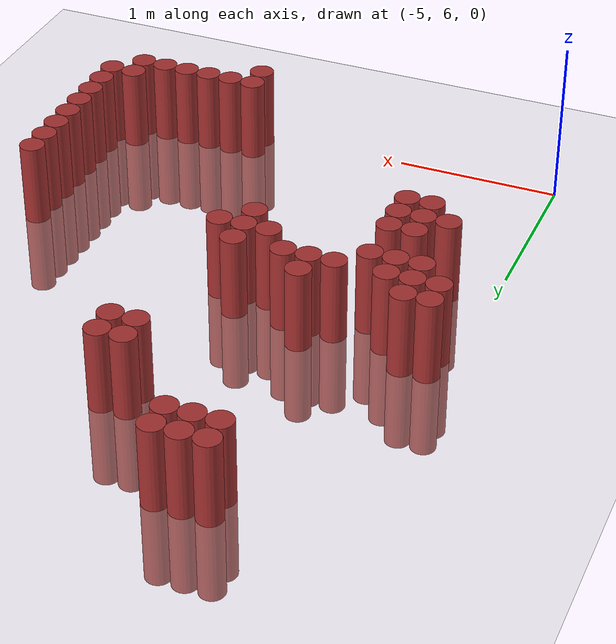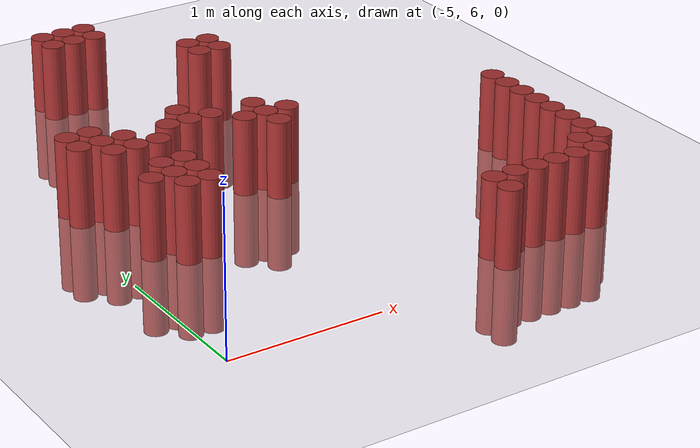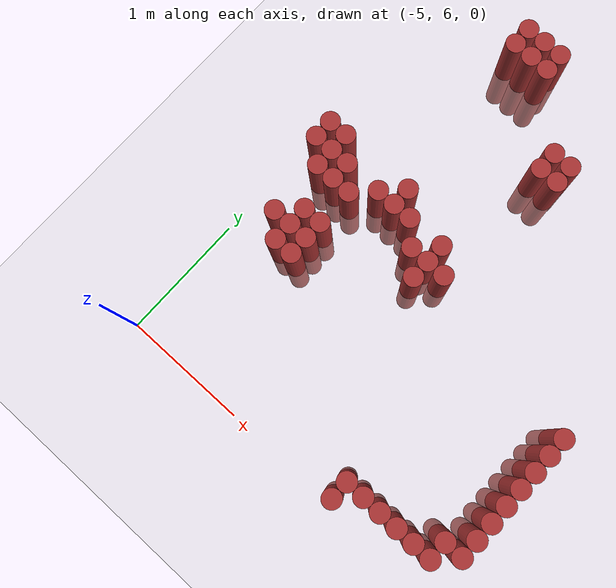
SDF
<sdf version="1.6">
 <world name="default">
  <model name="ground_plane">
   <static>1</static>
   <link name="link">
    <collision name="collision">
     <geometry><plane><normal>0 0 1</normal><size>100 100</size></plane></geometry>
     <surface><friction><ode><mu>100</mu><mu2>50</mu2></ode></friction></surface>
    </collision>
    <visual name="visual">
     <cast_shadows>0</cast_shadows>
     <geometry><plane><normal>0 0 1</normal><size>100 100</size></plane></geometry>
     <material>
      <script><uri>file://media/materials/scripts/gazebo.material</uri><name>Gazebo/Grey</name></script>
     </material>
    </visual>
   </link>
  </model>
  <model name="unit_cylinder_262">
   <static>1</static>
   <pose>-4.875000 7.875000 0.000000 0.000000 0.000000 0.000000</pose>
   <link name="link">
    <inertial>
     <mass>1</mass>
     <inertia><ixx>0.145833</ixx><ixy>0</ixy><ixz>0</ixz><iyy>0.145833</iyy><iyz>0</iyz><izz>0.125</izz></inertia>
    </inertial>
    <collision name="collision">
     <geometry><cylinder><radius>0.075000</radius><length>1</length></cylinder></geometry>
    </collision>
    <visual name="visual">
     <geometry><cylinder><radius>0.075000</radius><length>1</length></cylinder></geometry>
     <material>
      <ambient>0.648000 0.192000 0.192000 1</ambient>
      <diffuse>0.648000 0.192000 0.192000 1</diffuse>
     </material>
     <material>
      <script><name>Gazebo/Grey</name><uri>file://media/materials/scripts/gazebo.material</uri></script>
     </material>
    </visual>
   </link>
  </model>
  <model name="unit_cylinder_263">
   <static>1</static>
   <pose>-4.875000 8.025000 0.000000 0.000000 0.000000 0.000000</pose>
   <link name="link">
    <inertial>
     <mass>1</mass>
     <inertia><ixx>0.145833</ixx><ixy>0</ixy><ixz>0</ixz><iyy>0.145833</iyy><iyz>0</iyz><izz>0.125</izz></inertia>
    </inertial>
    <collision name="collision">
     <geometry><cylinder><radius>0.075000</radius><length>1</length></cylinder></geometry>
    </collision>
    <visual name="visual">
     <geometry><cylinder><radius>0.075000</radius><length>1</length></cylinder></geometry>
     <material>
      <ambient>0.648000 0.192000 0.192000 1</ambient>
      <diffuse>0.648000 0.192000 0.192000 1</diffuse>
     </material>
     <material>
      <script><name>Gazebo/Grey</name><uri>file://media/materials/scripts/gazebo.material</uri></script>
     </material>
    </visual>
   </link>
  </model>
  <model name="unit_cylinder_264">
   <static>1</static>
   <pose>-4.725000 7.275000 0.000000 0.000000 0.000000 0.000000</pose>
   <link name="link">
    <inertial>
     <mass>1</mass>
     <inertia><ixx>0.145833</ixx><ixy>0</ixy><ixz>0</ixz><iyy>0.145833</iyy><iyz>0</iyz><izz>0.125</izz></inertia>
    </inertial>
    <collision name="collision">
     <geometry><cylinder><radius>0.075000</radius><length>1</length></cylinder></geometry>
    </collision>
    <visual name="visual">
     <geometry><cylinder><radius>0.075000</radius><length>1</length></cylinder></geometry>
     <material>
      <ambient>0.648000 0.192000 0.192000 1</ambient>
      <diffuse>0.648000 0.192000 0.192000 1</diffuse>
     </material>
     <material>
      <script><name>Gazebo/Grey</name><uri>file://media/materials/scripts/gazebo.material</uri></script>
     </material>
    </visual>
   </link>
  </model>
  <model name="unit_cylinder_265">
   <static>1</static>
   <pose>-4.725000 7.725000 0.000000 0.000000 0.000000 0.000000</pose>
   <link name="link">
    <inertial>
     <mass>1</mass>
     <inertia><ixx>0.145833</ixx><ixy>0</ixy><ixz>0</ixz><iyy>0.145833</iyy><iyz>0</iyz><izz>0.125</izz></inertia>
    </inertial>
    <collision name="collision">
     <geometry><cylinder><radius>0.075000</radius><length>1</length></cylinder></geometry>
    </collision>
    <visual name="visual">
     <geometry><cylinder><radius>0.075000</radius><length>1</length></cylinder></geometry>
     <material>
      <ambient>0.648000 0.192000 0.192000 1</ambient>
      <diffuse>0.648000 0.192000 0.192000 1</diffuse>
     </material>
     <material>
      <script><name>Gazebo/Grey</name><uri>file://media/materials/scripts/gazebo.material</uri></script>
     </material>
    </visual>
   </link>
  </model>
  <model name="unit_cylinder_266">
   <static>1</static>
   <pose>-4.725000 7.875000 0.000000 0.000000 0.000000 0.000000</pose>
   <link name="link">
    <inertial>
     <mass>1</mass>
     <inertia><ixx>0.145833</ixx><ixy>0</ixy><ixz>0</ixz><iyy>0.145833</iyy><iyz>0</iyz><izz>0.125</izz></inertia>
    </inertial>
    <collision name="collision">
     <geometry><cylinder><radius>0.075000</radius><length>1</length></cylinder></geometry>
    </collision>
    <visual name="visual">
     <geometry><cylinder><radius>0.075000</radius><length>1</length></cylinder></geometry>
     <material>
      <ambient>0.648000 0.192000 0.192000 1</ambient>
      <diffuse>0.648000 0.192000 0.192000 1</diffuse>
     </material>
     <material>
      <script><name>Gazebo/Grey</name><uri>file://media/materials/scripts/gazebo.material</uri></script>
     </material>
    </visual>
   </link>
  </model>
  <model name="unit_cylinder_267">
   <static>1</static>
   <pose>-4.725000 8.025000 0.000000 0.000000 0.000000 0.000000</pose>
   <link name="link">
    <inertial>
     <mass>1</mass>
     <inertia><ixx>0.145833</ixx><ixy>0</ixy><ixz>0</ixz><iyy>0.145833</iyy><iyz>0</iyz><izz>0.125</izz></inertia>
    </inertial>
    <collision name="collision">
     <geometry><cylinder><radius>0.075000</radius><length>1</length></cylinder></geometry>
    </collision>
    <visual name="visual">
     <geometry><cylinder><radius>0.075000</radius><length>1</length></cylinder></geometry>
     <material>
      <ambient>0.648000 0.192000 0.192000 1</ambient>
      <diffuse>0.648000 0.192000 0.192000 1</diffuse>
     </material>
     <material>
      <script><name>Gazebo/Grey</name><uri>file://media/materials/scripts/gazebo.material</uri></script>
     </material>
    </visual>
   </link>
  </model>
  <model name="unit_cylinder_268">
   <static>1</static>
   <pose>-4.575000 7.125000 0.000000 0.000000 0.000000 0.000000</pose>
   <link name="link">
    <inertial>
     <mass>1</mass>
     <inertia><ixx>0.145833</ixx><ixy>0</ixy><ixz>0</ixz><iyy>0.145833</iyy><iyz>0</iyz><izz>0.125</izz></inertia>
    </inertial>
    <collision name="collision">
     <geometry><cylinder><radius>0.075000</radius><length>1</length></cylinder></geometry>
    </collision>
    <visual name="visual">
     <geometry><cylinder><radius>0.075000</radius><length>1</length></cylinder></geometry>
     <material>
      <ambient>0.648000 0.192000 0.192000 1</ambient>
      <diffuse>0.648000 0.192000 0.192000 1</diffuse>
     </material>
     <material>
      <script><name>Gazebo/Grey</name><uri>file://media/materials/scripts/gazebo.material</uri></script>
     </material>
    </visual>
   </link>
  </model>
  <model name="unit_cylinder_269">
   <static>1</static>
   <pose>-4.575000 7.275000 0.000000 0.000000 0.000000 0.000000</pose>
   <link name="link">
    <inertial>
     <mass>1</mass>
     <inertia><ixx>0.145833</ixx><ixy>0</ixy><ixz>0</ixz><iyy>0.145833</iyy><iyz>0</iyz><izz>0.125</izz></inertia>
    </inertial>
    <collision name="collision">
     <geometry><cylinder><radius>0.075000</radius><length>1</length></cylinder></geometry>
    </collision>
    <visual name="visual">
     <geometry><cylinder><radius>0.075000</radius><length>1</length></cylinder></geometry>
     <material>
      <ambient>0.648000 0.192000 0.192000 1</ambient>
      <diffuse>0.648000 0.192000 0.192000 1</diffuse>
     </material>
     <material>
      <script><name>Gazebo/Grey</name><uri>file://media/materials/scripts/gazebo.material</uri></script>
     </material>
    </visual>
   </link>
  </model>
  <model name="unit_cylinder_270">
   <static>1</static>
   <pose>-4.575000 7.425000 0.000000 0.000000 0.000000 0.000000</pose>
   <link name="link">
    <inertial>
     <mass>1</mass>
     <inertia><ixx>0.145833</ixx><ixy>0</ixy><ixz>0</ixz><iyy>0.145833</iyy><iyz>0</iyz><izz>0.125</izz></inertia>
    </inertial>
    <collision name="collision">
     <geometry><cylinder><radius>0.075000</radius><length>1</length></cylinder></geometry>
    </collision>
    <visual name="visual">
     <geometry><cylinder><radius>0.075000</radius><length>1</length></cylinder></geometry>
     <material>
      <ambient>0.648000 0.192000 0.192000 1</ambient>
      <diffuse>0.648000 0.192000 0.192000 1</diffuse>
     </material>
     <material>
      <script><name>Gazebo/Grey</name><uri>file://media/materials/scripts/gazebo.material</uri></script>
     </material>
    </visual>
   </link>
  </model>
  <model name="unit_cylinder_271">
   <static>1</static>
   <pose>-4.575000 7.725000 0.000000 0.000000 0.000000 0.000000</pose>
   <link name="link">
    <inertial>
     <mass>1</mass>
     <inertia><ixx>0.145833</ixx><ixy>0</ixy><ixz>0</ixz><iyy>0.145833</iyy><iyz>0</iyz><izz>0.125</izz></inertia>
    </inertial>
    <collision name="collision">
     <geometry><cylinder><radius>0.075000</radius><length>1</length></cylinder></geometry>
    </collision>
    <visual name="visual">
     <geometry><cylinder><radius>0.075000</radius><length>1</length></cylinder></geometry>
     <material>
      <ambient>0.648000 0.192000 0.192000 1</ambient>
      <diffuse>0.648000 0.192000 0.192000 1</diffuse>
     </material>
     <material>
      <script><name>Gazebo/Grey</name><uri>file://media/materials/scripts/gazebo.material</uri></script>
     </material>
    </visual>
   </link>
  </model>
  <model name="unit_cylinder_272">
   <static>1</static>
   <pose>-4.575000 7.875000 0.000000 0.000000 0.000000 0.000000</pose>
   <link name="link">
    <inertial>
     <mass>1</mass>
     <inertia><ixx>0.145833</ixx><ixy>0</ixy><ixz>0</ixz><iyy>0.145833</iyy><iyz>0</iyz><izz>0.125</izz></inertia>
    </inertial>
    <collision name="collision">
     <geometry><cylinder><radius>0.075000</radius><length>1</length></cylinder></geometry>
    </collision>
    <visual name="visual">
     <geometry><cylinder><radius>0.075000</radius><length>1</length></cylinder></geometry>
     <material>
      <ambient>0.648000 0.192000 0.192000 1</ambient>
      <diffuse>0.648000 0.192000 0.192000 1</diffuse>
     </material>
     <material>
      <script><name>Gazebo/Grey</name><uri>file://media/materials/scripts/gazebo.material</uri></script>
     </material>
    </visual>
   </link>
  </model>
  <model name="unit_cylinder_273">
   <static>1</static>
   <pose>-4.425000 7.125000 0.000000 0.000000 0.000000 0.000000</pose>
   <link name="link">
    <inertial>
     <mass>1</mass>
     <inertia><ixx>0.145833</ixx><ixy>0</ixy><ixz>0</ixz><iyy>0.145833</iyy><iyz>0</iyz><izz>0.125</izz></inertia>
    </inertial>
    <collision name="collision">
     <geometry><cylinder><radius>0.075000</radius><length>1</length></cylinder></geometry>
    </collision>
    <visual name="visual">
     <geometry><cylinder><radius>0.075000</radius><length>1</length></cylinder></geometry>
     <material>
      <ambient>0.648000 0.192000 0.192000 1</ambient>
      <diffuse>0.648000 0.192000 0.192000 1</diffuse>
     </material>
     <material>
      <script><name>Gazebo/Grey</name><uri>file://media/materials/scripts/gazebo.material</uri></script>
     </material>
    </visual>
   </link>
  </model>
  <model name="unit_cylinder_274">
   <static>1</static>
   <pose>-4.425000 7.275000 0.000000 0.000000 0.000000 0.000000</pose>
   <link name="link">
    <inertial>
     <mass>1</mass>
     <inertia><ixx>0.145833</ixx><ixy>0</ixy><ixz>0</ixz><iyy>0.145833</iyy><iyz>0</iyz><izz>0.125</izz></inertia>
    </inertial>
    <collision name="collision">
     <geometry><cylinder><radius>0.075000</radius><length>1</length></cylinder></geometry>
    </collision>
    <visual name="visual">
     <geometry><cylinder><radius>0.075000</radius><length>1</length></cylinder></geometry>
     <material>
      <ambient>0.648000 0.192000 0.192000 1</ambient>
      <diffuse>0.648000 0.192000 0.192000 1</diffuse>
     </material>
     <material>
      <script><name>Gazebo/Grey</name><uri>file://media/materials/scripts/gazebo.material</uri></script>
     </material>
    </visual>
   </link>
  </model>
  <model name="unit_cylinder_275">
   <static>1</static>
   <pose>-4.425000 7.425000 0.000000 0.000000 0.000000 0.000000</pose>
   <link name="link">
    <inertial>
     <mass>1</mass>
     <inertia><ixx>0.145833</ixx><ixy>0</ixy><ixz>0</ixz><iyy>0.145833</iyy><iyz>0</iyz><izz>0.125</izz></inertia>
    </inertial>
    <collision name="collision">
     <geometry><cylinder><radius>0.075000</radius><length>1</length></cylinder></geometry>
    </collision>
    <visual name="visual">
     <geometry><cylinder><radius>0.075000</radius><length>1</length></cylinder></geometry>
     <material>
      <ambient>0.648000 0.192000 0.192000 1</ambient>
      <diffuse>0.648000 0.192000 0.192000 1</diffuse>
     </material>
     <material>
      <script><name>Gazebo/Grey</name><uri>file://media/materials/scripts/gazebo.material</uri></script>
     </material>
    </visual>
   </link>
  </model>
  <model name="unit_cylinder_276">
   <static>1</static>
   <pose>-4.425000 7.725000 0.000000 0.000000 0.000000 0.000000</pose>
   <link name="link">
    <inertial>
     <mass>1</mass>
     <inertia><ixx>0.145833</ixx><ixy>0</ixy><ixz>0</ixz><iyy>0.145833</iyy><iyz>0</iyz><izz>0.125</izz></inertia>
    </inertial>
    <collision name="collision">
     <geometry><cylinder><radius>0.075000</radius><length>1</length></cylinder></geometry>
    </collision>
    <visual name="visual">
     <geometry><cylinder><radius>0.075000</radius><length>1</length></cylinder></geometry>
     <material>
      <ambient>0.648000 0.192000 0.192000 1</ambient>
      <diffuse>0.648000 0.192000 0.192000 1</diffuse>
     </material>
     <material>
      <script><name>Gazebo/Grey</name><uri>file://media/materials/scripts/gazebo.material</uri></script>
     </material>
    </visual>
   </link>
  </model>
  <model name="unit_cylinder_277">
   <static>1</static>
   <pose>-4.275000 7.875000 0.000000 0.000000 0.000000 0.000000</pose>
   <link name="link">
    <inertial>
     <mass>1</mass>
     <inertia><ixx>0.145833</ixx><ixy>0</ixy><ixz>0</ixz><iyy>0.145833</iyy><iyz>0</iyz><izz>0.125</izz></inertia>
    </inertial>
    <collision name="collision">
     <geometry><cylinder><radius>0.075000</radius><length>1</length></cylinder></geometry>
    </collision>
    <visual name="visual">
     <geometry><cylinder><radius>0.075000</radius><length>1</length></cylinder></geometry>
     <material>
      <ambient>0.648000 0.192000 0.192000 1</ambient>
      <diffuse>0.648000 0.192000 0.192000 1</diffuse>
     </material>
     <material>
      <script><name>Gazebo/Grey</name><uri>file://media/materials/scripts/gazebo.material</uri></script>
     </material>
    </visual>
   </link>
  </model>
  <model name="unit_cylinder_278">
   <static>1</static>
   <pose>-4.275000 9.375000 0.000000 0.000000 0.000000 0.000000</pose>
   <link name="link">
    <inertial>
     <mass>1</mass>
     <inertia><ixx>0.145833</ixx><ixy>0</ixy><ixz>0</ixz><iyy>0.145833</iyy><iyz>0</iyz><izz>0.125</izz></inertia>
    </inertial>
    <collision name="collision">
     <geometry><cylinder><radius>0.075000</radius><length>1</length></cylinder></geometry>
    </collision>
    <visual name="visual">
     <geometry><cylinder><radius>0.075000</radius><length>1</length></cylinder></geometry>
     <material>
      <ambient>0.648000 0.192000 0.192000 1</ambient>
      <diffuse>0.648000 0.192000 0.192000 1</diffuse>
     </material>
     <material>
      <script><name>Gazebo/Grey</name><uri>file://media/materials/scripts/gazebo.material</uri></script>
     </material>
    </visual>
   </link>
  </model>
  <model name="unit_cylinder_279">
   <static>1</static>
   <pose>-4.275000 9.525000 0.000000 0.000000 0.000000 0.000000</pose>
   <link name="link">
    <inertial>
     <mass>1</mass>
     <inertia><ixx>0.145833</ixx><ixy>0</ixy><ixz>0</ixz><iyy>0.145833</iyy><iyz>0</iyz><izz>0.125</izz></inertia>
    </inertial>
    <collision name="collision">
     <geometry><cylinder><radius>0.075000</radius><length>1</length></cylinder></geometry>
    </collision>
    <visual name="visual">
     <geometry><cylinder><radius>0.075000</radius><length>1</length></cylinder></geometry>
     <material>
      <ambient>0.648000 0.192000 0.192000 1</ambient>
      <diffuse>0.648000 0.192000 0.192000 1</diffuse>
     </material>
     <material>
      <script><name>Gazebo/Grey</name><uri>file://media/materials/scripts/gazebo.material</uri></script>
     </material>
    </visual>
   </link>
  </model>
  <model name="unit_cylinder_280">
   <static>1</static>
   <pose>-4.125000 7.875000 0.000000 0.000000 0.000000 0.000000</pose>
   <link name="link">
    <inertial>
     <mass>1</mass>
     <inertia><ixx>0.145833</ixx><ixy>0</ixy><ixz>0</ixz><iyy>0.145833</iyy><iyz>0</iyz><izz>0.125</izz></inertia>
    </inertial>
    <collision name="collision">
     <geometry><cylinder><radius>0.075000</radius><length>1</length></cylinder></geometry>
    </collision>
    <visual name="visual">
     <geometry><cylinder><radius>0.075000</radius><length>1</length></cylinder></geometry>
     <material>
      <ambient>0.648000 0.192000 0.192000 1</ambient>
      <diffuse>0.648000 0.192000 0.192000 1</diffuse>
     </material>
     <material>
      <script><name>Gazebo/Grey</name><uri>file://media/materials/scripts/gazebo.material</uri></script>
     </material>
    </visual>
   </link>
  </model>
  <model name="unit_cylinder_281">
   <static>1</static>
   <pose>-4.125000 8.025000 0.000000 0.000000 0.000000 0.000000</pose>
   <link name="link">
    <inertial>
     <mass>1</mass>
     <inertia><ixx>0.145833</ixx><ixy>0</ixy><ixz>0</ixz><iyy>0.145833</iyy><iyz>0</iyz><izz>0.125</izz></inertia>
    </inertial>
    <collision name="collision">
     <geometry><cylinder><radius>0.075000</radius><length>1</length></cylinder></geometry>
    </collision>
    <visual name="visual">
     <geometry><cylinder><radius>0.075000</radius><length>1</length></cylinder></geometry>
     <material>
      <ambient>0.648000 0.192000 0.192000 1</ambient>
      <diffuse>0.648000 0.192000 0.192000 1</diffuse>
     </material>
     <material>
      <script><name>Gazebo/Grey</name><uri>file://media/materials/scripts/gazebo.material</uri></script>
     </material>
    </visual>
   </link>
  </model>
  <model name="unit_cylinder_282">
   <static>1</static>
   <pose>-4.125000 9.375000 0.000000 0.000000 0.000000 0.000000</pose>
   <link name="link">
    <inertial>
     <mass>1</mass>
     <inertia><ixx>0.145833</ixx><ixy>0</ixy><ixz>0</ixz><iyy>0.145833</iyy><iyz>0</iyz><izz>0.125</izz></inertia>
    </inertial>
    <collision name="collision">
     <geometry><cylinder><radius>0.075000</radius><length>1</length></cylinder></geometry>
    </collision>
    <visual name="visual">
     <geometry><cylinder><radius>0.075000</radius><length>1</length></cylinder></geometry>
     <material>
      <ambient>0.648000 0.192000 0.192000 1</ambient>
      <diffuse>0.648000 0.192000 0.192000 1</diffuse>
     </material>
     <material>
      <script><name>Gazebo/Grey</name><uri>file://media/materials/scripts/gazebo.material</uri></script>
     </material>
    </visual>
   </link>
  </model>
  <model name="unit_cylinder_283">
   <static>1</static>
   <pose>-4.125000 9.525000 0.000000 0.000000 0.000000 0.000000</pose>
   <link name="link">
    <inertial>
     <mass>1</mass>
     <inertia><ixx>0.145833</ixx><ixy>0</ixy><ixz>0</ixz><iyy>0.145833</iyy><iyz>0</iyz><izz>0.125</izz></inertia>
    </inertial>
    <collision name="collision">
     <geometry><cylinder><radius>0.075000</radius><length>1</length></cylinder></geometry>
    </collision>
    <visual name="visual">
     <geometry><cylinder><radius>0.075000</radius><length>1</length></cylinder></geometry>
     <material>
      <ambient>0.648000 0.192000 0.192000 1</ambient>
      <diffuse>0.648000 0.192000 0.192000 1</diffuse>
     </material>
     <material>
      <script><name>Gazebo/Grey</name><uri>file://media/materials/scripts/gazebo.material</uri></script>
     </material>
    </visual>
   </link>
  </model>
  <model name="unit_cylinder_284">
   <static>1</static>
   <pose>-3.975000 7.875000 0.000000 0.000000 0.000000 0.000000</pose>
   <link name="link">
    <inertial>
     <mass>1</mass>
     <inertia><ixx>0.145833</ixx><ixy>0</ixy><ixz>0</ixz><iyy>0.145833</iyy><iyz>0</iyz><izz>0.125</izz></inertia>
    </inertial>
    <collision name="collision">
     <geometry><cylinder><radius>0.075000</radius><length>1</length></cylinder></geometry>
    </collision>
    <visual name="visual">
     <geometry><cylinder><radius>0.075000</radius><length>1</length></cylinder></geometry>
     <material>
      <ambient>0.648000 0.192000 0.192000 1</ambient>
      <diffuse>0.648000 0.192000 0.192000 1</diffuse>
     </material>
     <material>
      <script><name>Gazebo/Grey</name><uri>file://media/materials/scripts/gazebo.material</uri></script>
     </material>
    </visual>
   </link>
  </model>
  <model name="unit_cylinder_285">
   <static>1</static>
   <pose>-3.975000 9.375000 0.000000 0.000000 0.000000 0.000000</pose>
   <link name="link">
    <inertial>
     <mass>1</mass>
     <inertia><ixx>0.145833</ixx><ixy>0</ixy><ixz>0</ixz><iyy>0.145833</iyy><iyz>0</iyz><izz>0.125</izz></inertia>
    </inertial>
    <collision name="collision">
     <geometry><cylinder><radius>0.075000</radius><length>1</length></cylinder></geometry>
    </collision>
    <visual name="visual">
     <geometry><cylinder><radius>0.075000</radius><length>1</length></cylinder></geometry>
     <material>
      <ambient>0.648000 0.192000 0.192000 1</ambient>
      <diffuse>0.648000 0.192000 0.192000 1</diffuse>
     </material>
     <material>
      <script><name>Gazebo/Grey</name><uri>file://media/materials/scripts/gazebo.material</uri></script>
     </material>
    </visual>
   </link>
  </model>
  <model name="unit_cylinder_286">
   <static>1</static>
   <pose>-3.975000 9.525000 0.000000 0.000000 0.000000 0.000000</pose>
   <link name="link">
    <inertial>
     <mass>1</mass>
     <inertia><ixx>0.145833</ixx><ixy>0</ixy><ixz>0</ixz><iyy>0.145833</iyy><iyz>0</iyz><izz>0.125</izz></inertia>
    </inertial>
    <collision name="collision">
     <geometry><cylinder><radius>0.075000</radius><length>1</length></cylinder></geometry>
    </collision>
    <visual name="visual">
     <geometry><cylinder><radius>0.075000</radius><length>1</length></cylinder></geometry>
     <material>
      <ambient>0.648000 0.192000 0.192000 1</ambient>
      <diffuse>0.648000 0.192000 0.192000 1</diffuse>
     </material>
     <material>
      <script><name>Gazebo/Grey</name><uri>file://media/materials/scripts/gazebo.material</uri></script>
     </material>
    </visual>
   </link>
  </model>
  <model name="unit_cylinder_292">
   <static>1</static>
   <pose>-3.825000 7.725000 0.000000 0.000000 0.000000 0.000000</pose>
   <link name="link">
    <inertial>
     <mass>1</mass>
     <inertia><ixx>0.145833</ixx><ixy>0</ixy><ixz>0</ixz><iyy>0.145833</iyy><iyz>0</iyz><izz>0.125</izz></inertia>
    </inertial>
    <collision name="collision">
     <geometry><cylinder><radius>0.075000</radius><length>1</length></cylinder></geometry>
    </collision>
    <visual name="visual">
     <geometry><cylinder><radius>0.075000</radius><length>1</length></cylinder></geometry>
     <material>
      <ambient>0.648000 0.192000 0.192000 1</ambient>
      <diffuse>0.648000 0.192000 0.192000 1</diffuse>
     </material>
     <material>
      <script><name>Gazebo/Grey</name><uri>file://media/materials/scripts/gazebo.material</uri></script>
     </material>
    </visual>
   </link>
  </model>
  <model name="unit_cylinder_295">
   <static>1</static>
   <pose>-3.675000 7.575000 0.000000 0.000000 0.000000 0.000000</pose>
   <link name="link">
    <inertial>
     <mass>1</mass>
     <inertia><ixx>0.145833</ixx><ixy>0</ixy><ixz>0</ixz><iyy>0.145833</iyy><iyz>0</iyz><izz>0.125</izz></inertia>
    </inertial>
    <collision name="collision">
     <geometry><cylinder><radius>0.075000</radius><length>1</length></cylinder></geometry>
    </collision>
    <visual name="visual">
     <geometry><cylinder><radius>0.075000</radius><length>1</length></cylinder></geometry>
     <material>
      <ambient>0.648000 0.192000 0.192000 1</ambient>
      <diffuse>0.648000 0.192000 0.192000 1</diffuse>
     </material>
     <material>
      <script><name>Gazebo/Grey</name><uri>file://media/materials/scripts/gazebo.material</uri></script>
     </material>
    </visual>
   </link>
  </model>
  <model name="unit_cylinder_296">
   <static>1</static>
   <pose>-3.675000 7.725000 0.000000 0.000000 0.000000 0.000000</pose>
   <link name="link">
    <inertial>
     <mass>1</mass>
     <inertia><ixx>0.145833</ixx><ixy>0</ixy><ixz>0</ixz><iyy>0.145833</iyy><iyz>0</iyz><izz>0.125</izz></inertia>
    </inertial>
    <collision name="collision">
     <geometry><cylinder><radius>0.075000</radius><length>1</length></cylinder></geometry>
    </collision>
    <visual name="visual">
     <geometry><cylinder><radius>0.075000</radius><length>1</length></cylinder></geometry>
     <material>
      <ambient>0.648000 0.192000 0.192000 1</ambient>
      <diffuse>0.648000 0.192000 0.192000 1</diffuse>
     </material>
     <material>
      <script><name>Gazebo/Grey</name><uri>file://media/materials/scripts/gazebo.material</uri></script>
     </material>
    </visual>
   </link>
  </model>
  <model name="unit_cylinder_297">
   <static>1</static>
   <pose>-3.675000 7.875000 0.000000 0.000000 0.000000 0.000000</pose>
   <link name="link">
    <inertial>
     <mass>1</mass>
     <inertia><ixx>0.145833</ixx><ixy>0</ixy><ixz>0</ixz><iyy>0.145833</iyy><iyz>0</iyz><izz>0.125</izz></inertia>
    </inertial>
    <collision name="collision">
     <geometry><cylinder><radius>0.075000</radius><length>1</length></cylinder></geometry>
    </collision>
    <visual name="visual">
     <geometry><cylinder><radius>0.075000</radius><length>1</length></cylinder></geometry>
     <material>
      <ambient>0.648000 0.192000 0.192000 1</ambient>
      <diffuse>0.648000 0.192000 0.192000 1</diffuse>
     </material>
     <material>
      <script><name>Gazebo/Grey</name><uri>file://media/materials/scripts/gazebo.material</uri></script>
     </material>
    </visual>
   </link>
  </model>
  <model name="unit_cylinder_300">
   <static>1</static>
   <pose>-3.525000 7.725000 0.000000 0.000000 0.000000 0.000000</pose>
   <link name="link">
    <inertial>
     <mass>1</mass>
     <inertia><ixx>0.145833</ixx><ixy>0</ixy><ixz>0</ixz><iyy>0.145833</iyy><iyz>0</iyz><izz>0.125</izz></inertia>
    </inertial>
    <collision name="collision">
     <geometry><cylinder><radius>0.075000</radius><length>1</length></cylinder></geometry>
    </collision>
    <visual name="visual">
     <geometry><cylinder><radius>0.075000</radius><length>1</length></cylinder></geometry>
     <material>
      <ambient>0.648000 0.192000 0.192000 1</ambient>
      <diffuse>0.648000 0.192000 0.192000 1</diffuse>
     </material>
     <material>
      <script><name>Gazebo/Grey</name><uri>file://media/materials/scripts/gazebo.material</uri></script>
     </material>
    </visual>
   </link>
  </model>
  <model name="unit_cylinder_301">
   <static>1</static>
   <pose>-3.525000 8.775000 0.000000 0.000000 0.000000 0.000000</pose>
   <link name="link">
    <inertial>
     <mass>1</mass>
     <inertia><ixx>0.145833</ixx><ixy>0</ixy><ixz>0</ixz><iyy>0.145833</iyy><iyz>0</iyz><izz>0.125</izz></inertia>
    </inertial>
    <collision name="collision">
     <geometry><cylinder><radius>0.075000</radius><length>1</length></cylinder></geometry>
    </collision>
    <visual name="visual">
     <geometry><cylinder><radius>0.075000</radius><length>1</length></cylinder></geometry>
     <material>
      <ambient>0.648000 0.192000 0.192000 1</ambient>
      <diffuse>0.648000 0.192000 0.192000 1</diffuse>
     </material>
     <material>
      <script><name>Gazebo/Grey</name><uri>file://media/materials/scripts/gazebo.material</uri></script>
     </material>
    </visual>
   </link>
  </model>
  <model name="unit_cylinder_302">
   <static>1</static>
   <pose>-3.525000 8.925000 0.000000 0.000000 0.000000 0.000000</pose>
   <link name="link">
    <inertial>
     <mass>1</mass>
     <inertia><ixx>0.145833</ixx><ixy>0</ixy><ixz>0</ixz><iyy>0.145833</iyy><iyz>0</iyz><izz>0.125</izz></inertia>
    </inertial>
    <collision name="collision">
     <geometry><cylinder><radius>0.075000</radius><length>1</length></cylinder></geometry>
    </collision>
    <visual name="visual">
     <geometry><cylinder><radius>0.075000</radius><length>1</length></cylinder></geometry>
     <material>
      <ambient>0.648000 0.192000 0.192000 1</ambient>
      <diffuse>0.648000 0.192000 0.192000 1</diffuse>
     </material>
     <material>
      <script><name>Gazebo/Grey</name><uri>file://media/materials/scripts/gazebo.material</uri></script>
     </material>
    </visual>
   </link>
  </model>
  <model name="unit_cylinder_305">
   <static>1</static>
   <pose>-3.375000 8.775000 0.000000 0.000000 0.000000 0.000000</pose>
   <link name="link">
    <inertial>
     <mass>1</mass>
     <inertia><ixx>0.145833</ixx><ixy>0</ixy><ixz>0</ixz><iyy>0.145833</iyy><iyz>0</iyz><izz>0.125</izz></inertia>
    </inertial>
    <collision name="collision">
     <geometry><cylinder><radius>0.075000</radius><length>1</length></cylinder></geometry>
    </collision>
    <visual name="visual">
     <geometry><cylinder><radius>0.075000</radius><length>1</length></cylinder></geometry>
     <material>
      <ambient>0.648000 0.192000 0.192000 1</ambient>
      <diffuse>0.648000 0.192000 0.192000 1</diffuse>
     </material>
     <material>
      <script><name>Gazebo/Grey</name><uri>file://media/materials/scripts/gazebo.material</uri></script>
     </material>
    </visual>
   </link>
  </model>
  <model name="unit_cylinder_306">
   <static>1</static>
   <pose>-3.375000 8.925000 0.000000 0.000000 0.000000 0.000000</pose>
   <link name="link">
    <inertial>
     <mass>1</mass>
     <inertia><ixx>0.145833</ixx><ixy>0</ixy><ixz>0</ixz><iyy>0.145833</iyy><iyz>0</iyz><izz>0.125</izz></inertia>
    </inertial>
    <collision name="collision">
     <geometry><cylinder><radius>0.075000</radius><length>1</length></cylinder></geometry>
    </collision>
    <visual name="visual">
     <geometry><cylinder><radius>0.075000</radius><length>1</length></cylinder></geometry>
     <material>
      <ambient>0.648000 0.192000 0.192000 1</ambient>
      <diffuse>0.648000 0.192000 0.192000 1</diffuse>
     </material>
     <material>
      <script><name>Gazebo/Grey</name><uri>file://media/materials/scripts/gazebo.material</uri></script>
     </material>
    </visual>
   </link>
  </model>
  <model name="unit_cylinder_312">
   <static>1</static>
   <pose>-3.075000 6.075000 0.000000 0.000000 0.000000 0.000000</pose>
   <link name="link">
    <inertial>
     <mass>1</mass>
     <inertia><ixx>0.145833</ixx><ixy>0</ixy><ixz>0</ixz><iyy>0.145833</iyy><iyz>0</iyz><izz>0.125</izz></inertia>
    </inertial>
    <collision name="collision">
     <geometry><cylinder><radius>0.075000</radius><length>1</length></cylinder></geometry>
    </collision>
    <visual name="visual">
     <geometry><cylinder><radius>0.075000</radius><length>1</length></cylinder></geometry>
     <material>
      <ambient>0.648000 0.192000 0.192000 1</ambient>
      <diffuse>0.648000 0.192000 0.192000 1</diffuse>
     </material>
     <material>
      <script><name>Gazebo/Grey</name><uri>file://media/materials/scripts/gazebo.material</uri></script>
     </material>
    </visual>
   </link>
  </model>
  <model name="unit_cylinder_313">
   <static>1</static>
   <pose>-3.075000 6.225000 0.000000 0.000000 0.000000 0.000000</pose>
   <link name="link">
    <inertial>
     <mass>1</mass>
     <inertia><ixx>0.145833</ixx><ixy>0</ixy><ixz>0</ixz><iyy>0.145833</iyy><iyz>0</iyz><izz>0.125</izz></inertia>
    </inertial>
    <collision name="collision">
     <geometry><cylinder><radius>0.075000</radius><length>1</length></cylinder></geometry>
    </collision>
    <visual name="visual">
     <geometry><cylinder><radius>0.075000</radius><length>1</length></cylinder></geometry>
     <material>
      <ambient>0.648000 0.192000 0.192000 1</ambient>
      <diffuse>0.648000 0.192000 0.192000 1</diffuse>
     </material>
     <material>
      <script><name>Gazebo/Grey</name><uri>file://media/materials/scripts/gazebo.material</uri></script>
     </material>
    </visual>
   </link>
  </model>
  <model name="unit_cylinder_315">
   <static>1</static>
   <pose>-2.925000 6.225000 0.000000 0.000000 0.000000 0.000000</pose>
   <link name="link">
    <inertial>
     <mass>1</mass>
     <inertia><ixx>0.145833</ixx><ixy>0</ixy><ixz>0</ixz><iyy>0.145833</iyy><iyz>0</iyz><izz>0.125</izz></inertia>
    </inertial>
    <collision name="collision">
     <geometry><cylinder><radius>0.075000</radius><length>1</length></cylinder></geometry>
    </collision>
    <visual name="visual">
     <geometry><cylinder><radius>0.075000</radius><length>1</length></cylinder></geometry>
     <material>
      <ambient>0.648000 0.192000 0.192000 1</ambient>
      <diffuse>0.648000 0.192000 0.192000 1</diffuse>
     </material>
     <material>
      <script><name>Gazebo/Grey</name><uri>file://media/materials/scripts/gazebo.material</uri></script>
     </material>
    </visual>
   </link>
  </model>
  <model name="unit_cylinder_317">
   <static>1</static>
   <pose>-2.775000 6.225000 0.000000 0.000000 0.000000 0.000000</pose>
   <link name="link">
    <inertial>
     <mass>1</mass>
     <inertia><ixx>0.145833</ixx><ixy>0</ixy><ixz>0</ixz><iyy>0.145833</iyy><iyz>0</iyz><izz>0.125</izz></inertia>
    </inertial>
    <collision name="collision">
     <geometry><cylinder><radius>0.075000</radius><length>1</length></cylinder></geometry>
    </collision>
    <visual name="visual">
     <geometry><cylinder><radius>0.075000</radius><length>1</length></cylinder></geometry>
     <material>
      <ambient>0.648000 0.192000 0.192000 1</ambient>
      <diffuse>0.648000 0.192000 0.192000 1</diffuse>
     </material>
     <material>
      <script><name>Gazebo/Grey</name><uri>file://media/materials/scripts/gazebo.material</uri></script>
     </material>
    </visual>
   </link>
  </model>
  <model name="unit_cylinder_319">
   <static>1</static>
   <pose>-2.625000 6.225000 0.000000 0.000000 0.000000 0.000000</pose>
   <link name="link">
    <inertial>
     <mass>1</mass>
     <inertia><ixx>0.145833</ixx><ixy>0</ixy><ixz>0</ixz><iyy>0.145833</iyy><iyz>0</iyz><izz>0.125</izz></inertia>
    </inertial>
    <collision name="collision">
     <geometry><cylinder><radius>0.075000</radius><length>1</length></cylinder></geometry>
    </collision>
    <visual name="visual">
     <geometry><cylinder><radius>0.075000</radius><length>1</length></cylinder></geometry>
     <material>
      <ambient>0.648000 0.192000 0.192000 1</ambient>
      <diffuse>0.648000 0.192000 0.192000 1</diffuse>
     </material>
     <material>
      <script><name>Gazebo/Grey</name><uri>file://media/materials/scripts/gazebo.material</uri></script>
     </material>
    </visual>
   </link>
  </model>
  <model name="unit_cylinder_321">
   <static>1</static>
   <pose>-2.475000 6.225000 0.000000 0.000000 0.000000 0.000000</pose>
   <link name="link">
    <inertial>
     <mass>1</mass>
     <inertia><ixx>0.145833</ixx><ixy>0</ixy><ixz>0</ixz><iyy>0.145833</iyy><iyz>0</iyz><izz>0.125</izz></inertia>
    </inertial>
    <collision name="collision">
     <geometry><cylinder><radius>0.075000</radius><length>1</length></cylinder></geometry>
    </collision>
    <visual name="visual">
     <geometry><cylinder><radius>0.075000</radius><length>1</length></cylinder></geometry>
     <material>
      <ambient>0.648000 0.192000 0.192000 1</ambient>
      <diffuse>0.648000 0.192000 0.192000 1</diffuse>
     </material>
     <material>
      <script><name>Gazebo/Grey</name><uri>file://media/materials/scripts/gazebo.material</uri></script>
     </material>
    </visual>
   </link>
  </model>
  <model name="unit_cylinder_323">
   <static>1</static>
   <pose>-2.325000 6.225000 0.000000 0.000000 0.000000 0.000000</pose>
   <link name="link">
    <inertial>
     <mass>1</mass>
     <inertia><ixx>0.145833</ixx><ixy>0</ixy><ixz>0</ixz><iyy>0.145833</iyy><iyz>0</iyz><izz>0.125</izz></inertia>
    </inertial>
    <collision name="collision">
     <geometry><cylinder><radius>0.075000</radius><length>1</length></cylinder></geometry>
    </collision>
    <visual name="visual">
     <geometry><cylinder><radius>0.075000</radius><length>1</length></cylinder></geometry>
     <material>
      <ambient>0.648000 0.192000 0.192000 1</ambient>
      <diffuse>0.648000 0.192000 0.192000 1</diffuse>
     </material>
     <material>
      <script><name>Gazebo/Grey</name><uri>file://media/materials/scripts/gazebo.material</uri></script>
     </material>
    </visual>
   </link>
  </model>
  <model name="unit_cylinder_324">
   <static>1</static>
   <pose>-2.325000 6.375000 0.000000 0.000000 0.000000 0.000000</pose>
   <link name="link">
    <inertial>
     <mass>1</mass>
     <inertia><ixx>0.145833</ixx><ixy>0</ixy><ixz>0</ixz><iyy>0.145833</iyy><iyz>0</iyz><izz>0.125</izz></inertia>
    </inertial>
    <collision name="collision">
     <geometry><cylinder><radius>0.075000</radius><length>1</length></cylinder></geometry>
    </collision>
    <visual name="visual">
     <geometry><cylinder><radius>0.075000</radius><length>1</length></cylinder></geometry>
     <material>
      <ambient>0.648000 0.192000 0.192000 1</ambient>
      <diffuse>0.648000 0.192000 0.192000 1</diffuse>
     </material>
     <material>
      <script><name>Gazebo/Grey</name><uri>file://media/materials/scripts/gazebo.material</uri></script>
     </material>
    </visual>
   </link>
  </model>
  <model name="unit_cylinder_326">
   <static>1</static>
   <pose>-2.175000 6.375000 0.000000 0.000000 0.000000 0.000000</pose>
   <link name="link">
    <inertial>
     <mass>1</mass>
     <inertia><ixx>0.145833</ixx><ixy>0</ixy><ixz>0</ixz><iyy>0.145833</iyy><iyz>0</iyz><izz>0.125</izz></inertia>
    </inertial>
    <collision name="collision">
     <geometry><cylinder><radius>0.075000</radius><length>1</length></cylinder></geometry>
    </collision>
    <visual name="visual">
     <geometry><cylinder><radius>0.075000</radius><length>1</length></cylinder></geometry>
     <material>
      <ambient>0.648000 0.192000 0.192000 1</ambient>
      <diffuse>0.648000 0.192000 0.192000 1</diffuse>
     </material>
     <material>
      <script><name>Gazebo/Grey</name><uri>file://media/materials/scripts/gazebo.material</uri></script>
     </material>
    </visual>
   </link>
  </model>
  <model name="unit_cylinder_327">
   <static>1</static>
   <pose>-2.175000 6.525000 0.000000 0.000000 0.000000 0.000000</pose>
   <link name="link">
    <inertial>
     <mass>1</mass>
     <inertia><ixx>0.145833</ixx><ixy>0</ixy><ixz>0</ixz><iyy>0.145833</iyy><iyz>0</iyz><izz>0.125</izz></inertia>
    </inertial>
    <collision name="collision">
     <geometry><cylinder><radius>0.075000</radius><length>1</length></cylinder></geometry>
    </collision>
    <visual name="visual">
     <geometry><cylinder><radius>0.075000</radius><length>1</length></cylinder></geometry>
     <material>
      <ambient>0.648000 0.192000 0.192000 1</ambient>
      <diffuse>0.648000 0.192000 0.192000 1</diffuse>
     </material>
     <material>
      <script><name>Gazebo/Grey</name><uri>file://media/materials/scripts/gazebo.material</uri></script>
     </material>
    </visual>
   </link>
  </model>
  <model name="unit_cylinder_328">
   <static>1</static>
   <pose>-2.175000 6.675000 0.000000 0.000000 0.000000 0.000000</pose>
   <link name="link">
    <inertial>
     <mass>1</mass>
     <inertia><ixx>0.145833</ixx><ixy>0</ixy><ixz>0</ixz><iyy>0.145833</iyy><iyz>0</iyz><izz>0.125</izz></inertia>
    </inertial>
    <collision name="collision">
     <geometry><cylinder><radius>0.075000</radius><length>1</length></cylinder></geometry>
    </collision>
    <visual name="visual">
     <geometry><cylinder><radius>0.075000</radius><length>1</length></cylinder></geometry>
     <material>
      <ambient>0.648000 0.192000 0.192000 1</ambient>
      <diffuse>0.648000 0.192000 0.192000 1</diffuse>
     </material>
     <material>
      <script><name>Gazebo/Grey</name><uri>file://media/materials/scripts/gazebo.material</uri></script>
     </material>
    </visual>
   </link>
  </model>
  <model name="unit_cylinder_329">
   <static>1</static>
   <pose>-2.175000 6.825000 0.000000 0.000000 0.000000 0.000000</pose>
   <link name="link">
    <inertial>
     <mass>1</mass>
     <inertia><ixx>0.145833</ixx><ixy>0</ixy><ixz>0</ixz><iyy>0.145833</iyy><iyz>0</iyz><izz>0.125</izz></inertia>
    </inertial>
    <collision name="collision">
     <geometry><cylinder><radius>0.075000</radius><length>1</length></cylinder></geometry>
    </collision>
    <visual name="visual">
     <geometry><cylinder><radius>0.075000</radius><length>1</length></cylinder></geometry>
     <material>
      <ambient>0.648000 0.192000 0.192000 1</ambient>
      <diffuse>0.648000 0.192000 0.192000 1</diffuse>
     </material>
     <material>
      <script><name>Gazebo/Grey</name><uri>file://media/materials/scripts/gazebo.material</uri></script>
     </material>
    </visual>
   </link>
  </model>
  <model name="unit_cylinder_330">
   <static>1</static>
   <pose>-2.175000 6.975000 0.000000 0.000000 0.000000 0.000000</pose>
   <link name="link">
    <inertial>
     <mass>1</mass>
     <inertia><ixx>0.145833</ixx><ixy>0</ixy><ixz>0</ixz><iyy>0.145833</iyy><iyz>0</iyz><izz>0.125</izz></inertia>
    </inertial>
    <collision name="collision">
     <geometry><cylinder><radius>0.075000</radius><length>1</length></cylinder></geometry>
    </collision>
    <visual name="visual">
     <geometry><cylinder><radius>0.075000</radius><length>1</length></cylinder></geometry>
     <material>
      <ambient>0.648000 0.192000 0.192000 1</ambient>
      <diffuse>0.648000 0.192000 0.192000 1</diffuse>
     </material>
     <material>
      <script><name>Gazebo/Grey</name><uri>file://media/materials/scripts/gazebo.material</uri></script>
     </material>
    </visual>
   </link>
  </model>
  <model name="unit_cylinder_331">
   <static>1</static>
   <pose>-2.175000 7.125000 0.000000 0.000000 0.000000 0.000000</pose>
   <link name="link">
    <inertial>
     <mass>1</mass>
     <inertia><ixx>0.145833</ixx><ixy>0</ixy><ixz>0</ixz><iyy>0.145833</iyy><iyz>0</iyz><izz>0.125</izz></inertia>
    </inertial>
    <collision name="collision">
     <geometry><cylinder><radius>0.075000</radius><length>1</length></cylinder></geometry>
    </collision>
    <visual name="visual">
     <geometry><cylinder><radius>0.075000</radius><length>1</length></cylinder></geometry>
     <material>
      <ambient>0.648000 0.192000 0.192000 1</ambient>
      <diffuse>0.648000 0.192000 0.192000 1</diffuse>
     </material>
     <material>
      <script><name>Gazebo/Grey</name><uri>file://media/materials/scripts/gazebo.material</uri></script>
     </material>
    </visual>
   </link>
  </model>
  <model name="unit_cylinder_332">
   <static>1</static>
   <pose>-2.175000 7.275000 0.000000 0.000000 0.000000 0.000000</pose>
   <link name="link">
    <inertial>
     <mass>1</mass>
     <inertia><ixx>0.145833</ixx><ixy>0</ixy><ixz>0</ixz><iyy>0.145833</iyy><iyz>0</iyz><izz>0.125</izz></inertia>
    </inertial>
    <collision name="collision">
     <geometry><cylinder><radius>0.075000</radius><length>1</length></cylinder></geometry>
    </collision>
    <visual name="visual">
     <geometry><cylinder><radius>0.075000</radius><length>1</length></cylinder></geometry>
     <material>
      <ambient>0.648000 0.192000 0.192000 1</ambient>
      <diffuse>0.648000 0.192000 0.192000 1</diffuse>
     </material>
     <material>
      <script><name>Gazebo/Grey</name><uri>file://media/materials/scripts/gazebo.material</uri></script>
     </material>
    </visual>
   </link>
  </model>
  <model name="unit_cylinder_333">
   <static>1</static>
   <pose>-2.175000 7.425000 0.000000 0.000000 0.000000 0.000000</pose>
   <link name="link">
    <inertial>
     <mass>1</mass>
     <inertia><ixx>0.145833</ixx><ixy>0</ixy><ixz>0</ixz><iyy>0.145833</iyy><iyz>0</iyz><izz>0.125</izz></inertia>
    </inertial>
    <collision name="collision">
     <geometry><cylinder><radius>0.075000</radius><length>1</length></cylinder></geometry>
    </collision>
    <visual name="visual">
     <geometry><cylinder><radius>0.075000</radius><length>1</length></cylinder></geometry>
     <material>
      <ambient>0.648000 0.192000 0.192000 1</ambient>
      <diffuse>0.648000 0.192000 0.192000 1</diffuse>
     </material>
     <material>
      <script><name>Gazebo/Grey</name><uri>file://media/materials/scripts/gazebo.material</uri></script>
     </material>
    </visual>
   </link>
  </model>
 </world>
</sdf>
